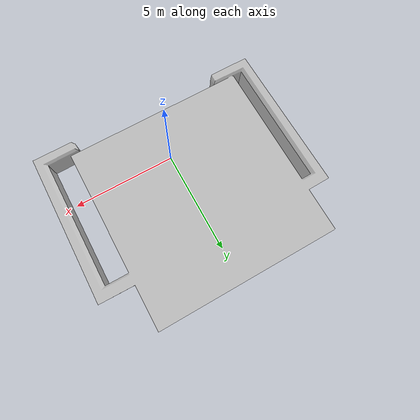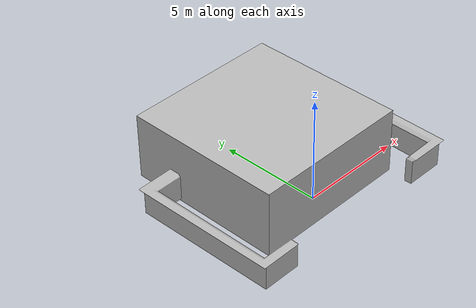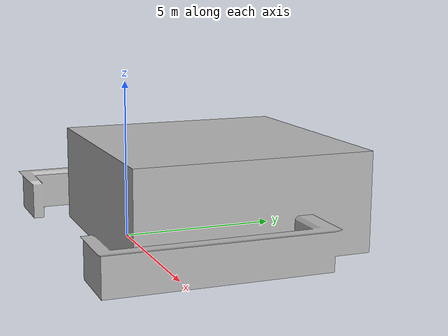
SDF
<?xml version='1.0'?>
<sdf version="1.4">
  <model name="park_toilet">
    <static>true</static>
    <link name="link">
      <collision name="collision">
        <geometry>
          <mesh>
            <uri>model://park_toilet/meshes/collision.dae</uri>
          </mesh>
        </geometry>
      </collision>
      <visual name="visual">
        <geometry>
          <mesh>
            <uri>model://park_toilet/meshes/park_toilet.dae</uri>
          </mesh>
        </geometry>
      </visual>
    </link>
  </model>
</sdf>
